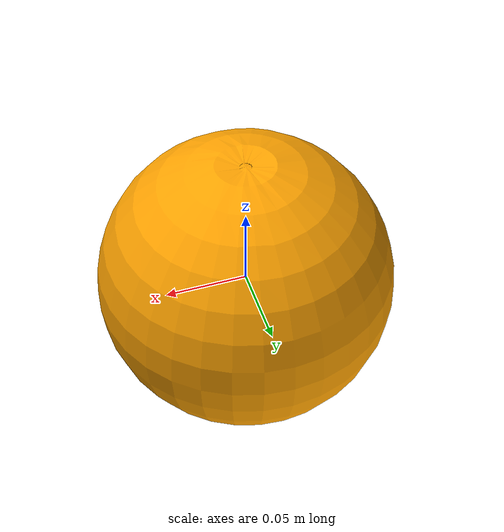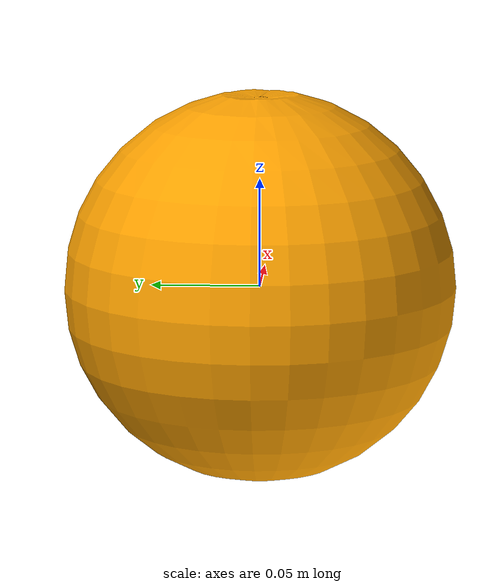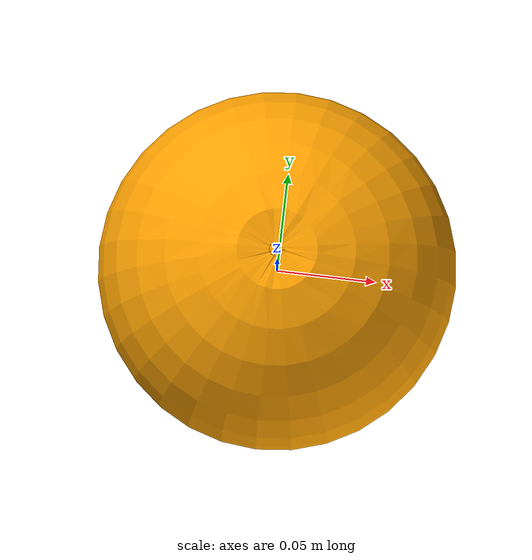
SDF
<?xml version="1.0" ?>
<sdf version="1.6">
  <model name="Orange">
    <static>true</static>
    <link name="link">
      <inertial>
        <pose>0 0 0 0 0 0</pose>
        <mass>0.002</mass>
        <inertia>
          <ixx>3.41333333333e-07</ixx>
          <ixy>0</ixy>
          <ixz>0</ixz>
          <iyy>3.41333333333e-07</iyy>
          <iyz>0</iyz>
          <izz>3.41333333333e-07</izz>
        </inertia>
      </inertial>

      <collision name="person">
        <pose>0 0 0 0 0 0</pose>
        <geometry>
          <mesh>
            <uri>model://Orange/meshes/Orange.dae</uri>
             <scale>0.09 0.09 0.09</scale>
          </mesh>
        </geometry>
        <surface>
          <friction>
            <ode>
              <mu>0.01</mu>
              <mu2>0.01</mu2>
            </ode>
          </friction>
          <contact>
            <ode>
              <kp>10000000.0</kp>
              <kd>10000000.0</kd>
              <min_depth>0.001</min_depth>
              <max_vel>1.1</max_vel>
            </ode>
          </contact>
        </surface>
      </collision>

      <visual name="visual">
        <pose>0 0 0 0 0 0</pose>
        <geometry>
          <mesh>
            <uri>model://Orange/meshes/Orange.dae</uri>
            <scale>0.09 0.09 0.09</scale>
          </mesh>
        </geometry>
         <material>
          <ambient>1 0.64 0 1</ambient>
          <diffuse>1 0.64 0 1</diffuse>
          <specular>0.1 0.1 0.1 1</specular>
          <emissive>0 0 0 0</emissive>
        </material>
      </visual>
    </link>
  </model>
</sdf>
